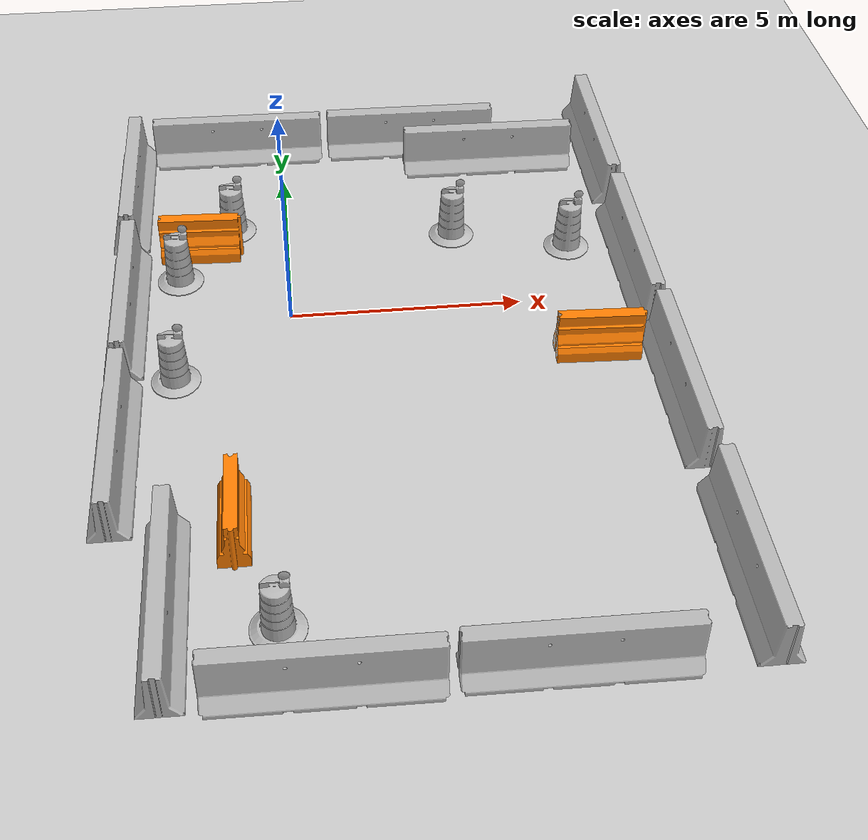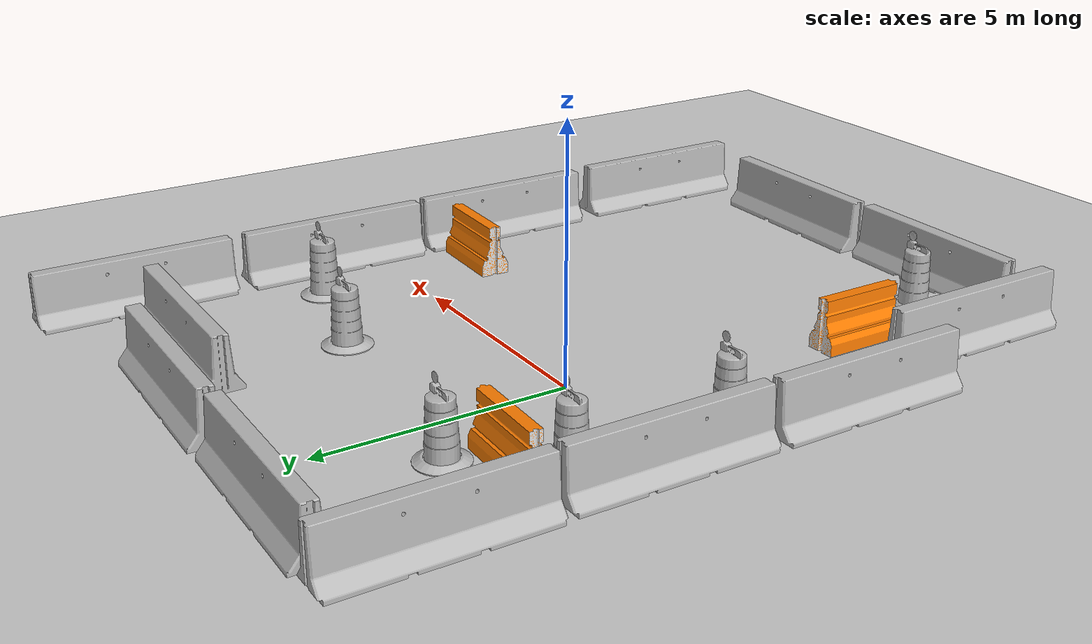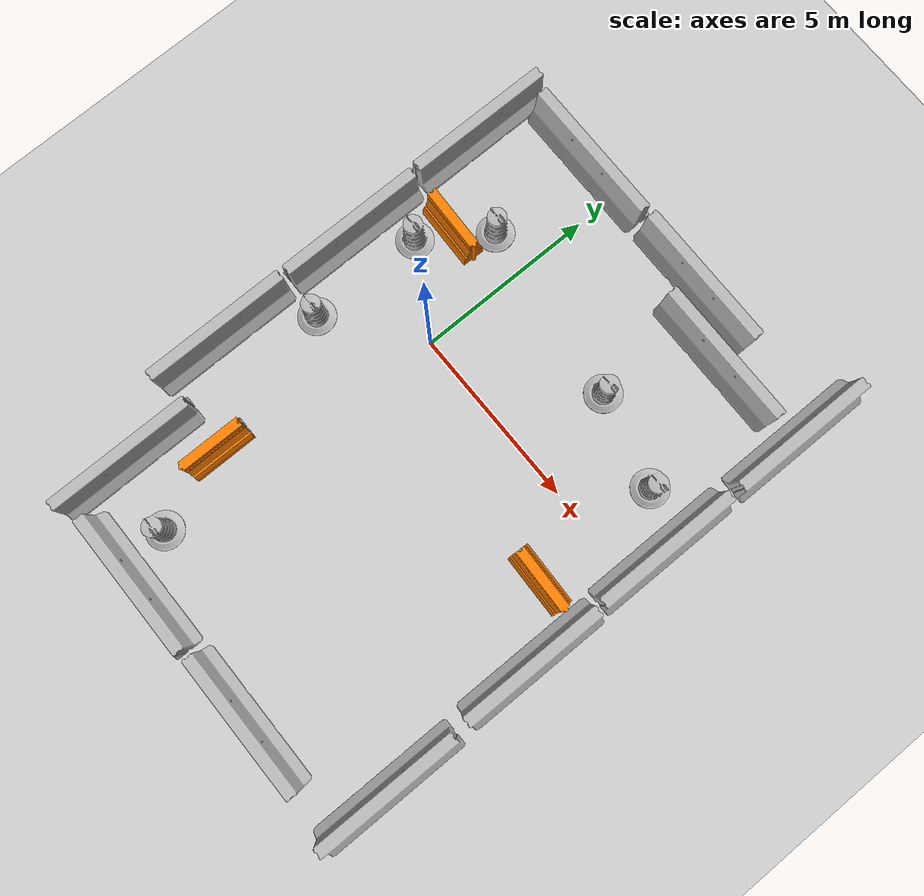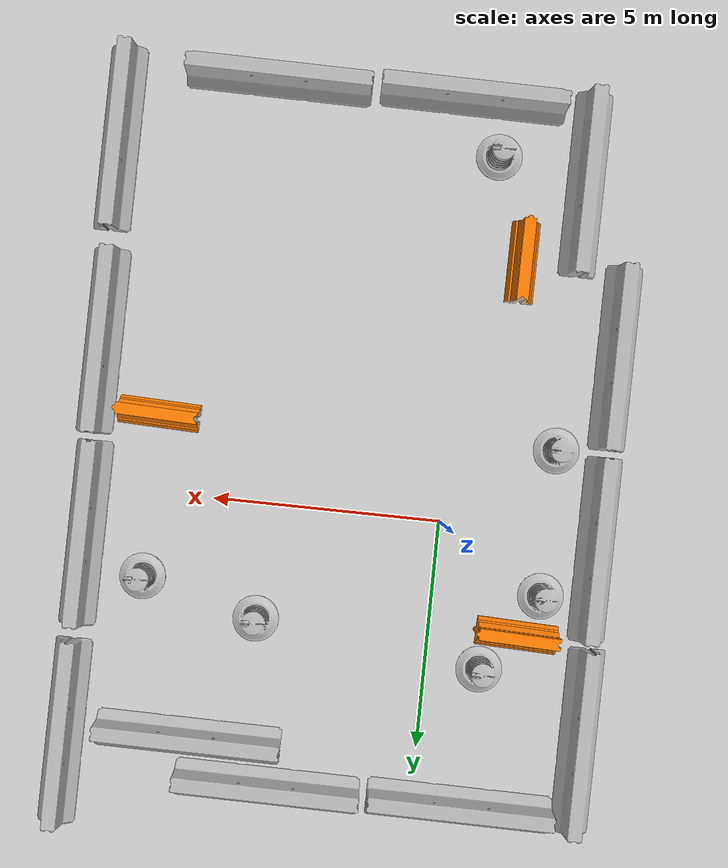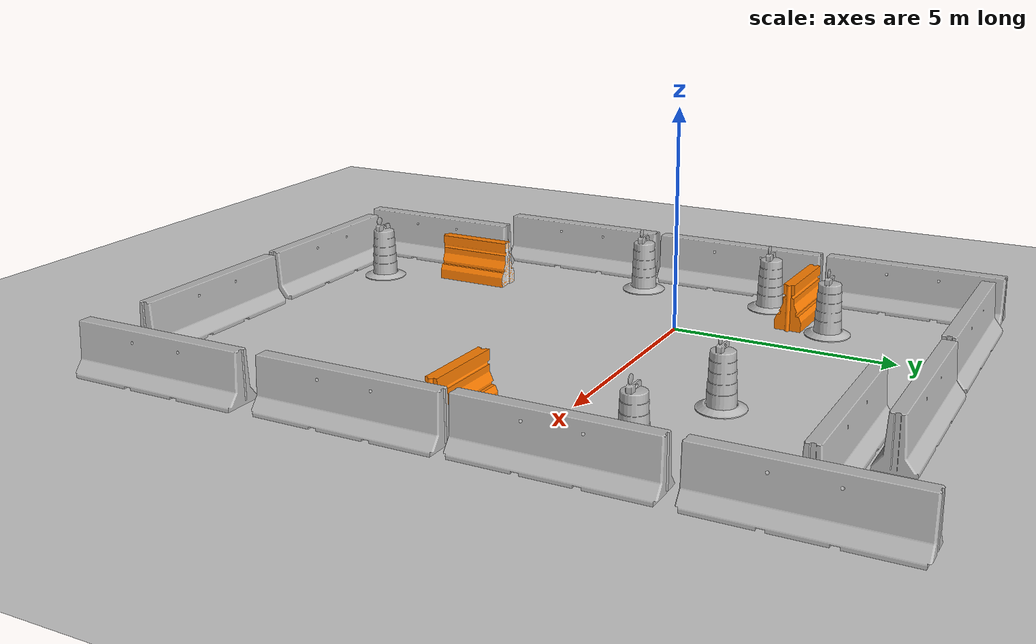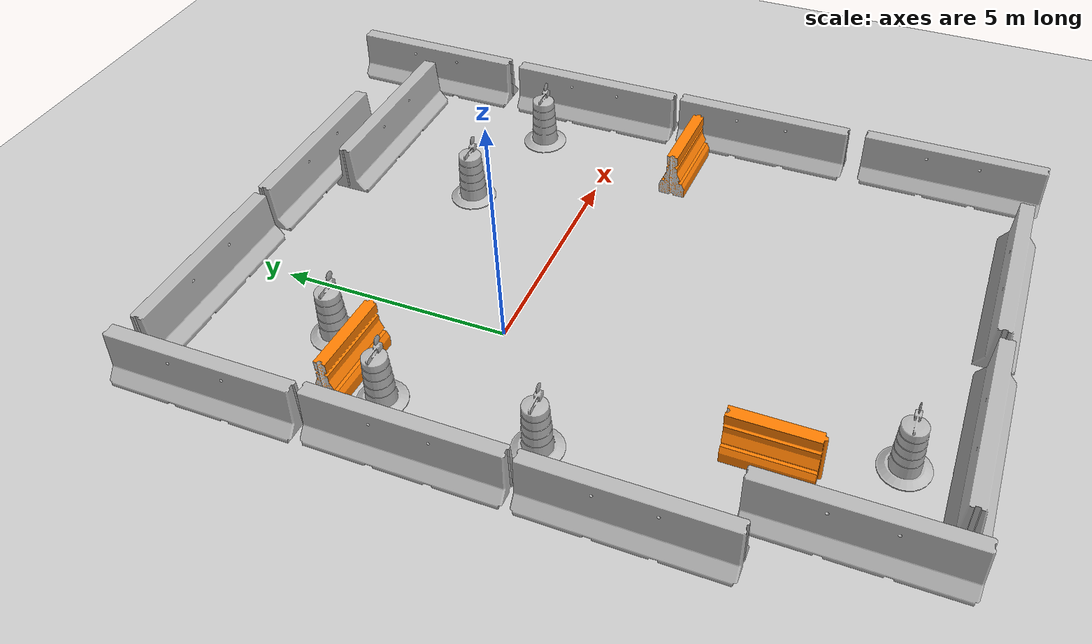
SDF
<sdf version="1.7">
 <world name="default">
  <light name="sun" type="directional">
   <pose>0 0 10 0 -0 0</pose>
   <diffuse>0.8 0.8 0.8 1</diffuse>
   <specular>0.2 0.2 0.2 1</specular>
   <attenuation>
    <range>1000</range>
    <constant>0.9</constant>
    <linear>0.01</linear>
    <quadratic>0.001</quadratic>
   </attenuation>
   <direction>-0.5 0.1 -0.9</direction>
   <spot><inner_angle>0</inner_angle><outer_angle>0</outer_angle><falloff>0</falloff></spot>
  </light>
  <model name="ground_plane">
   <static>1</static>
   <link name="link">
    <collision name="collision">
     <geometry><plane><normal>0 0 1</normal><size>100 100</size></plane></geometry>
     <surface><friction><ode><mu>100</mu><mu2>50</mu2></ode></friction></surface>
    </collision>
    <visual name="visual">
     <cast_shadows>0</cast_shadows>
     <geometry><plane><normal>0 0 1</normal><size>100 100</size></plane></geometry>
     <material>
      <script><uri>file://media/materials/scripts/gazebo.material</uri><name>Gazebo/Grey</name></script>
     </material>
    </visual>
   </link>
  </model>
  <gravity>0 0 -9.8</gravity>
  <magnetic_field>6e-06 2.3e-05 -4.2e-05</magnetic_field>
  <atmosphere type="adiabatic"/>
  <physics type="ode">
   <max_step_size>0.001</max_step_size>
   <real_time_factor>1</real_time_factor>
   <real_time_update_rate>1000</real_time_update_rate>
  </physics>
  <scene><ambient>0.4 0.4 0.4 1</ambient><background>0.7 0.7 0.7 1</background><shadows>1</shadows></scene>
  <audio><device>default</device></audio>
  <spherical_coordinates>
   <surface_model>EARTH_WGS84</surface_model>
   <latitude_deg>0</latitude_deg>
   <longitude_deg>0</longitude_deg>
   <elevation>0</elevation>
   <heading_deg>0</heading_deg>
  </spherical_coordinates>
  <model name="jersey_barrier">
   <static>1</static>
   <link name="link">
    <visual name="visual">
     <geometry><mesh><uri>model://jersey_barrier/meshes/jersey_barrier.dae</uri></mesh></geometry>
    </visual>
    <collision name="upright">
     <pose>0 0 0.5715 0 -0 0</pose>
     <geometry><box><size>4.06542 0.3063 1.143</size></box></geometry>
    </collision>
    <collision name="base">
     <pose>0 0 0.032258 0 -0 0</pose>
     <geometry><box><size>4.06542 0.8107 0.064516</size></box></geometry>
    </collision>
    <collision name="base2">
     <pose>0 0 0.1 0 -0 0</pose>
     <geometry><box><size>4.06542 0.65 0.1</size></box></geometry>
    </collision>
    <collision name="base3">
     <pose>0 0 0.2 0 -0 0</pose>
     <geometry><box><size>4.06542 0.5 0.1</size></box></geometry>
    </collision>
    <collision name="left-angle">
     <pose>0 -0.224 0.2401 0.9 -0 0</pose>
     <geometry><box><size>4.06542 0.5 0.064516</size></box></geometry>
    </collision>
    <collision name="right-angle">
     <pose>0 0.224 0.2401 -0.9 0 0</pose>
     <geometry><box><size>4.06542 0.5 0.064516</size></box></geometry>
    </collision>
   </link>
   <pose>-3.47167 0.268319 0 0 0 -1.57391</pose>
  </model>
  <model name="jersey_barrier_clone">
   <static>1</static>
   <link name="link">
    <visual name="visual">
     <geometry><mesh><uri>model://jersey_barrier/meshes/jersey_barrier.dae</uri></mesh></geometry>
    </visual>
    <collision name="upright">
     <pose>0 0 0.5715 0 -0 0</pose>
     <geometry><box><size>4.06542 0.3063 1.143</size></box></geometry>
    </collision>
    <collision name="base">
     <pose>0 0 0.032258 0 -0 0</pose>
     <geometry><box><size>4.06542 0.8107 0.064516</size></box></geometry>
    </collision>
    <collision name="base2">
     <pose>0 0 0.1 0 -0 0</pose>
     <geometry><box><size>4.06542 0.65 0.1</size></box></geometry>
    </collision>
    <collision name="base3">
     <pose>0 0 0.2 0 -0 0</pose>
     <geometry><box><size>4.06542 0.5 0.1</size></box></geometry>
    </collision>
    <collision name="left-angle">
     <pose>0 -0.224 0.2401 0.9 -0 0</pose>
     <geometry><box><size>4.06542 0.5 0.064516</size></box></geometry>
    </collision>
    <collision name="right-angle">
     <pose>0 0.224 0.2401 -0.9 0 0</pose>
     <geometry><box><size>4.06542 0.5 0.064516</size></box></geometry>
    </collision>
   </link>
   <pose>-3.51559 4.47458 0 0 0 -1.57391</pose>
  </model>
  <model name="jersey_barrier_clone_clone">
   <static>1</static>
   <link name="link">
    <visual name="visual">
     <geometry><mesh><uri>model://jersey_barrier/meshes/jersey_barrier.dae</uri></mesh></geometry>
    </visual>
    <collision name="upright">
     <pose>0 0 0.5715 0 -0 0</pose>
     <geometry><box><size>4.06542 0.3063 1.143</size></box></geometry>
    </collision>
    <collision name="base">
     <pose>0 0 0.032258 0 -0 0</pose>
     <geometry><box><size>4.06542 0.8107 0.064516</size></box></geometry>
    </collision>
    <collision name="base2">
     <pose>0 0 0.1 0 -0 0</pose>
     <geometry><box><size>4.06542 0.65 0.1</size></box></geometry>
    </collision>
    <collision name="base3">
     <pose>0 0 0.2 0 -0 0</pose>
     <geometry><box><size>4.06542 0.5 0.1</size></box></geometry>
    </collision>
    <collision name="left-angle">
     <pose>0 -0.224 0.2401 0.9 -0 0</pose>
     <geometry><box><size>4.06542 0.5 0.064516</size></box></geometry>
    </collision>
    <collision name="right-angle">
     <pose>0 0.224 0.2401 -0.9 0 0</pose>
     <geometry><box><size>4.06542 0.5 0.064516</size></box></geometry>
    </collision>
   </link>
   <pose>-3.49194 -3.94559 0 0 0 -1.57391</pose>
  </model>
  <model name="jersey_barrier_clone_clone_0">
   <static>1</static>
   <link name="link">
    <visual name="visual">
     <geometry><mesh><uri>model://jersey_barrier/meshes/jersey_barrier.dae</uri></mesh></geometry>
    </visual>
    <collision name="upright">
     <pose>0 0 0.5715 0 -0 0</pose>
     <geometry><box><size>4.06542 0.3063 1.143</size></box></geometry>
    </collision>
    <collision name="base">
     <pose>0 0 0.032258 0 -0 0</pose>
     <geometry><box><size>4.06542 0.8107 0.064516</size></box></geometry>
    </collision>
    <collision name="base2">
     <pose>0 0 0.1 0 -0 0</pose>
     <geometry><box><size>4.06542 0.65 0.1</size></box></geometry>
    </collision>
    <collision name="base3">
     <pose>0 0 0.2 0 -0 0</pose>
     <geometry><box><size>4.06542 0.5 0.1</size></box></geometry>
    </collision>
    <collision name="left-angle">
     <pose>0 -0.224 0.2401 0.9 -0 0</pose>
     <geometry><box><size>4.06542 0.5 0.064516</size></box></geometry>
    </collision>
    <collision name="right-angle">
     <pose>0 0.224 0.2401 -0.9 0 0</pose>
     <geometry><box><size>4.06542 0.5 0.064516</size></box></geometry>
    </collision>
   </link>
   <pose>-1.04259 6.17471 0 0 0 -0.010026</pose>
  </model>
  <model name="jersey_barrier_clone_clone_0_clone">
   <static>1</static>
   <link name="link">
    <visual name="visual">
     <geometry><mesh><uri>model://jersey_barrier/meshes/jersey_barrier.dae</uri></mesh></geometry>
    </visual>
    <collision name="upright">
     <pose>0 0 0.5715 0 -0 0</pose>
     <geometry><box><size>4.06542 0.3063 1.143</size></box></geometry>
    </collision>
    <collision name="base">
     <pose>0 0 0.032258 0 -0 0</pose>
     <geometry><box><size>4.06542 0.8107 0.064516</size></box></geometry>
    </collision>
    <collision name="base2">
     <pose>0 0 0.1 0 -0 0</pose>
     <geometry><box><size>4.06542 0.65 0.1</size></box></geometry>
    </collision>
    <collision name="base3">
     <pose>0 0 0.2 0 -0 0</pose>
     <geometry><box><size>4.06542 0.5 0.1</size></box></geometry>
    </collision>
    <collision name="left-angle">
     <pose>0 -0.224 0.2401 0.9 -0 0</pose>
     <geometry><box><size>4.06542 0.5 0.064516</size></box></geometry>
    </collision>
    <collision name="right-angle">
     <pose>0 0.224 0.2401 -0.9 0 0</pose>
     <geometry><box><size>4.06542 0.5 0.064516</size></box></geometry>
    </collision>
   </link>
   <pose>3.19196 6.17566 0 0 0 -0.010026</pose>
  </model>
  <model name="jersey_barrier_clone_clone_clone">
   <static>1</static>
   <link name="link">
    <visual name="visual">
     <geometry><mesh><uri>model://jersey_barrier/meshes/jersey_barrier.dae</uri></mesh></geometry>
    </visual>
    <collision name="upright">
     <pose>0 0 0.5715 0 -0 0</pose>
     <geometry><box><size>4.06542 0.3063 1.143</size></box></geometry>
    </collision>
    <collision name="base">
     <pose>0 0 0.032258 0 -0 0</pose>
     <geometry><box><size>4.06542 0.8107 0.064516</size></box></geometry>
    </collision>
    <collision name="base2">
     <pose>0 0 0.1 0 -0 0</pose>
     <geometry><box><size>4.06542 0.65 0.1</size></box></geometry>
    </collision>
    <collision name="base3">
     <pose>0 0 0.2 0 -0 0</pose>
     <geometry><box><size>4.06542 0.5 0.1</size></box></geometry>
    </collision>
    <collision name="left-angle">
     <pose>0 -0.224 0.2401 0.9 -0 0</pose>
     <geometry><box><size>4.06542 0.5 0.064516</size></box></geometry>
    </collision>
    <collision name="right-angle">
     <pose>0 0.224 0.2401 -0.9 0 0</pose>
     <geometry><box><size>4.06542 0.5 0.064516</size></box></geometry>
    </collision>
   </link>
   <pose>-2.45373 -7.67188 0 0 0 -1.57391</pose>
  </model>
  <model name="jersey_barrier_clone_clone_0_clone_0">
   <static>1</static>
   <link name="link">
    <visual name="visual">
     <geometry><mesh><uri>model://jersey_barrier/meshes/jersey_barrier.dae</uri></mesh></geometry>
    </visual>
    <collision name="upright">
     <pose>0 0 0.5715 0 -0 0</pose>
     <geometry><box><size>4.06542 0.3063 1.143</size></box></geometry>
    </collision>
    <collision name="base">
     <pose>0 0 0.032258 0 -0 0</pose>
     <geometry><box><size>4.06542 0.8107 0.064516</size></box></geometry>
    </collision>
    <collision name="base2">
     <pose>0 0 0.1 0 -0 0</pose>
     <geometry><box><size>4.06542 0.65 0.1</size></box></geometry>
    </collision>
    <collision name="base3">
     <pose>0 0 0.2 0 -0 0</pose>
     <geometry><box><size>4.06542 0.5 0.1</size></box></geometry>
    </collision>
    <collision name="left-angle">
     <pose>0 -0.224 0.2401 0.9 -0 0</pose>
     <geometry><box><size>4.06542 0.5 0.064516</size></box></geometry>
    </collision>
    <collision name="right-angle">
     <pose>0 0.224 0.2401 -0.9 0 0</pose>
     <geometry><box><size>4.06542 0.5 0.064516</size></box></geometry>
    </collision>
   </link>
   <pose>0.198187 -9.36273 0 0 0 -0.010026</pose>
  </model>
  <model name="jersey_barrier_clone_clone_0_clone_1">
   <static>1</static>
   <link name="link">
    <visual name="visual">
     <geometry><mesh><uri>model://jersey_barrier/meshes/jersey_barrier.dae</uri></mesh></geometry>
    </visual>
    <collision name="upright">
     <pose>0 0 0.5715 0 -0 0</pose>
     <geometry><box><size>4.06542 0.3063 1.143</size></box></geometry>
    </collision>
    <collision name="base">
     <pose>0 0 0.032258 0 -0 0</pose>
     <geometry><box><size>4.06542 0.8107 0.064516</size></box></geometry>
    </collision>
    <collision name="base2">
     <pose>0 0 0.1 0 -0 0</pose>
     <geometry><box><size>4.06542 0.65 0.1</size></box></geometry>
    </collision>
    <collision name="base3">
     <pose>0 0 0.2 0 -0 0</pose>
     <geometry><box><size>4.06542 0.5 0.1</size></box></geometry>
    </collision>
    <collision name="left-angle">
     <pose>0 -0.224 0.2401 0.9 -0 0</pose>
     <geometry><box><size>4.06542 0.5 0.064516</size></box></geometry>
    </collision>
    <collision name="right-angle">
     <pose>0 0.224 0.2401 -0.9 0 0</pose>
     <geometry><box><size>4.06542 0.5 0.064516</size></box></geometry>
    </collision>
   </link>
   <pose>4.45363 -9.33343 0 0 0 -0.010026</pose>
  </model>
  <model name="jersey_barrier_clone_clone_clone_0">
   <static>1</static>
   <link name="link">
    <visual name="visual">
     <geometry><mesh><uri>model://jersey_barrier/meshes/jersey_barrier.dae</uri></mesh></geometry>
    </visual>
    <collision name="upright">
     <pose>0 0 0.5715 0 -0 0</pose>
     <geometry><box><size>4.06542 0.3063 1.143</size></box></geometry>
    </collision>
    <collision name="base">
     <pose>0 0 0.032258 0 -0 0</pose>
     <geometry><box><size>4.06542 0.8107 0.064516</size></box></geometry>
    </collision>
    <collision name="base2">
     <pose>0 0 0.1 0 -0 0</pose>
     <geometry><box><size>4.06542 0.65 0.1</size></box></geometry>
    </collision>
    <collision name="base3">
     <pose>0 0 0.2 0 -0 0</pose>
     <geometry><box><size>4.06542 0.5 0.1</size></box></geometry>
    </collision>
    <collision name="left-angle">
     <pose>0 -0.224 0.2401 0.9 -0 0</pose>
     <geometry><box><size>4.06542 0.5 0.064516</size></box></geometry>
    </collision>
    <collision name="right-angle">
     <pose>0 0.224 0.2401 -0.9 0 0</pose>
     <geometry><box><size>4.06542 0.5 0.064516</size></box></geometry>
    </collision>
   </link>
   <pose>7.811 -7.65626 0 0 0 -1.57391</pose>
  </model>
  <model name="jersey_barrier_clone_clone_clone_1">
   <static>1</static>
   <link name="link">
    <visual name="visual">
     <geometry><mesh><uri>model://jersey_barrier/meshes/jersey_barrier.dae</uri></mesh></geometry>
    </visual>
    <collision name="upright">
     <pose>0 0 0.5715 0 -0 0</pose>
     <geometry><box><size>4.06542 0.3063 1.143</size></box></geometry>
    </collision>
    <collision name="base">
     <pose>0 0 0.032258 0 -0 0</pose>
     <geometry><box><size>4.06542 0.8107 0.064516</size></box></geometry>
    </collision>
    <collision name="base2">
     <pose>0 0 0.1 0 -0 0</pose>
     <geometry><box><size>4.06542 0.65 0.1</size></box></geometry>
    </collision>
    <collision name="base3">
     <pose>0 0 0.2 0 -0 0</pose>
     <geometry><box><size>4.06542 0.5 0.1</size></box></geometry>
    </collision>
    <collision name="left-angle">
     <pose>0 -0.224 0.2401 0.9 -0 0</pose>
     <geometry><box><size>4.06542 0.5 0.064516</size></box></geometry>
    </collision>
    <collision name="right-angle">
     <pose>0 0.224 0.2401 -0.9 0 0</pose>
     <geometry><box><size>4.06542 0.5 0.064516</size></box></geometry>
    </collision>
   </link>
   <pose>7.7441 -3.2014 0 0 0 -1.57391</pose>
  </model>
  <model name="jersey_barrier_clone_clone_clone_2">
   <static>1</static>
   <link name="link">
    <visual name="visual">
     <geometry><mesh><uri>model://jersey_barrier/meshes/jersey_barrier.dae</uri></mesh></geometry>
    </visual>
    <collision name="upright">
     <pose>0 0 0.5715 0 -0 0</pose>
     <geometry><box><size>4.06542 0.3063 1.143</size></box></geometry>
    </collision>
    <collision name="base">
     <pose>0 0 0.032258 0 -0 0</pose>
     <geometry><box><size>4.06542 0.8107 0.064516</size></box></geometry>
    </collision>
    <collision name="base2">
     <pose>0 0 0.1 0 -0 0</pose>
     <geometry><box><size>4.06542 0.65 0.1</size></box></geometry>
    </collision>
    <collision name="base3">
     <pose>0 0 0.2 0 -0 0</pose>
     <geometry><box><size>4.06542 0.5 0.1</size></box></geometry>
    </collision>
    <collision name="left-angle">
     <pose>0 -0.224 0.2401 0.9 -0 0</pose>
     <geometry><box><size>4.06542 0.5 0.064516</size></box></geometry>
    </collision>
    <collision name="right-angle">
     <pose>0 0.224 0.2401 -0.9 0 0</pose>
     <geometry><box><size>4.06542 0.5 0.064516</size></box></geometry>
    </collision>
   </link>
   <pose>7.69922 1.01734 0 0 0 -1.57391</pose>
  </model>
  <model name="jersey_barrier_clone_clone_clone_3">
   <static>1</static>
   <link name="link">
    <visual name="visual">
     <geometry><mesh><uri>model://jersey_barrier/meshes/jersey_barrier.dae</uri></mesh></geometry>
    </visual>
    <collision name="upright">
     <pose>0 0 0.5715 0 -0 0</pose>
     <geometry><box><size>4.06542 0.3063 1.143</size></box></geometry>
    </collision>
    <collision name="base">
     <pose>0 0 0.032258 0 -0 0</pose>
     <geometry><box><size>4.06542 0.8107 0.064516</size></box></geometry>
    </collision>
    <collision name="base2">
     <pose>0 0 0.1 0 -0 0</pose>
     <geometry><box><size>4.06542 0.65 0.1</size></box></geometry>
    </collision>
    <collision name="base3">
     <pose>0 0 0.2 0 -0 0</pose>
     <geometry><box><size>4.06542 0.5 0.1</size></box></geometry>
    </collision>
    <collision name="left-angle">
     <pose>0 -0.224 0.2401 0.9 -0 0</pose>
     <geometry><box><size>4.06542 0.5 0.064516</size></box></geometry>
    </collision>
    <collision name="right-angle">
     <pose>0 0.224 0.2401 -0.9 0 0</pose>
     <geometry><box><size>4.06542 0.5 0.064516</size></box></geometry>
    </collision>
   </link>
   <pose>7.72014 5.3794 0 0 0 -1.57391</pose>
  </model>
  <model name="jersey_barrier_clone_clone_0_clone_clone">
   <static>1</static>
   <link name="link">
    <visual name="visual">
     <geometry><mesh><uri>model://jersey_barrier/meshes/jersey_barrier.dae</uri></mesh></geometry>
    </visual>
    <collision name="upright">
     <pose>0 0 0.5715 0 -0 0</pose>
     <geometry><box><size>4.06542 0.3063 1.143</size></box></geometry>
    </collision>
    <collision name="base">
     <pose>0 0 0.032258 0 -0 0</pose>
     <geometry><box><size>4.06542 0.8107 0.064516</size></box></geometry>
    </collision>
    <collision name="base2">
     <pose>0 0 0.1 0 -0 0</pose>
     <geometry><box><size>4.06542 0.65 0.1</size></box></geometry>
    </collision>
    <collision name="base3">
     <pose>0 0 0.2 0 -0 0</pose>
     <geometry><box><size>4.06542 0.5 0.1</size></box></geometry>
    </collision>
    <collision name="left-angle">
     <pose>0 -0.224 0.2401 0.9 -0 0</pose>
     <geometry><box><size>4.06542 0.5 0.064516</size></box></geometry>
    </collision>
    <collision name="right-angle">
     <pose>0 0.224 0.2401 -0.9 0 0</pose>
     <geometry><box><size>4.06542 0.5 0.064516</size></box></geometry>
    </collision>
   </link>
   <pose>5.00455 5.26458 0 0 0 -0.010026</pose>
  </model>
  <model name="Construction Barrel">
   <link name="link">
    <inertial>
     <pose>0 0 0.4 0 -0 0</pose>
     <mass>500</mass>
     <inertia><ixx>51.2096</ixx><iyy>51.2096</iyy><izz>25</izz><ixy>0</ixy><ixz>0</ixz><iyz>0</iyz></inertia>
    </inertial>
    <collision name="collision">
     <geometry><mesh><uri>model://construction_barrel/meshes/construction_barrel.dae</uri></mesh></geometry>
    </collision>
    <visual name="visual">
     <geometry><mesh><uri>model://construction_barrel/meshes/construction_barrel.dae</uri></mesh></geometry>
    </visual>
   </link>
   <pose>3.79978 2.53711 1e-06 3e-06 2e-06 -3.3e-05</pose>
  </model>
  <model name="Construction Barrel_0">
   <link name="link">
    <inertial>
     <pose>0 0 0.4 0 -0 0</pose>
     <mass>500</mass>
     <inertia><ixx>51.2096</ixx><iyy>51.2096</iyy><izz>25</izz><ixy>0</ixy><ixz>0</ixz><iyz>0</iyz></inertia>
    </inertial>
    <collision name="collision">
     <geometry><mesh><uri>model://construction_barrel/meshes/construction_barrel.dae</uri></mesh></geometry>
    </collision>
    <visual name="visual">
     <geometry><mesh><uri>model://construction_barrel/meshes/construction_barrel.dae</uri></mesh></geometry>
    </visual>
   </link>
   <pose>-1.20184 3.1527 1e-06 3e-06 2e-06 -3.2e-05</pose>
  </model>
  <model name="Construction Barrel_1">
   <link name="link">
    <inertial>
     <pose>0 0 0.4 0 -0 0</pose>
     <mass>500</mass>
     <inertia><ixx>51.2096</ixx><iyy>51.2096</iyy><izz>25</izz><ixy>0</ixy><ixz>0</ixz><iyz>0</iyz></inertia>
    </inertial>
    <collision name="collision">
     <geometry><mesh><uri>model://construction_barrel/meshes/construction_barrel.dae</uri></mesh></geometry>
    </collision>
    <visual name="visual">
     <geometry><mesh><uri>model://construction_barrel/meshes/construction_barrel.dae</uri></mesh></geometry>
    </visual>
   </link>
   <pose>-0.508954 -8.11497 1e-06 3e-06 2e-06 -3.1e-05</pose>
  </model>
  <model name="Construction Barrel_2">
   <link name="link">
    <inertial>
     <pose>0 0 0.4 0 -0 0</pose>
     <mass>500</mass>
     <inertia><ixx>51.2096</ixx><iyy>51.2096</iyy><izz>25</izz><ixy>0</ixy><ixz>0</ixz><iyz>0</iyz></inertia>
    </inertial>
    <collision name="collision">
     <geometry><mesh><uri>model://construction_barrel/meshes/construction_barrel.dae</uri></mesh></geometry>
    </collision>
    <visual name="visual">
     <geometry><mesh><uri>model://construction_barrel/meshes/construction_barrel.dae</uri></mesh></geometry>
    </visual>
   </link>
   <pose>6.37132 1.85913 1e-06 3e-06 2e-06 -2.8e-05</pose>
  </model>
  <model name="Construction Barrel_3">
   <link name="link">
    <inertial>
     <pose>0 0 0.4 0 -0 0</pose>
     <mass>500</mass>
     <inertia><ixx>51.2096</ixx><iyy>51.2096</iyy><izz>25</izz><ixy>0</ixy><ixz>0</ixz><iyz>0</iyz></inertia>
    </inertial>
    <collision name="collision">
     <geometry><mesh><uri>model://construction_barrel/meshes/construction_barrel.dae</uri></mesh></geometry>
    </collision>
    <visual name="visual">
     <geometry><mesh><uri>model://construction_barrel/meshes/construction_barrel.dae</uri></mesh></geometry>
    </visual>
   </link>
   <pose>-2.39013 1.41868 1e-06 3e-06 2e-06 -2.7e-05</pose>
  </model>
  <model name="Construction Barrel_4">
   <link name="link">
    <inertial>
     <pose>0 0 0.4 0 -0 0</pose>
     <mass>500</mass>
     <inertia><ixx>51.2096</ixx><iyy>51.2096</iyy><izz>25</izz><ixy>0</ixy><ixz>0</ixz><iyz>0</iyz></inertia>
    </inertial>
    <collision name="collision">
     <geometry><mesh><uri>model://construction_barrel/meshes/construction_barrel.dae</uri></mesh></geometry>
    </collision>
    <visual name="visual">
     <geometry><mesh><uri>model://construction_barrel/meshes/construction_barrel.dae</uri></mesh></geometry>
    </visual>
   </link>
   <pose>-2.40939 -1.80429 1e-06 3e-06 2e-06 -2.6e-05</pose>
  </model>
  <model name="drc_practice_organge_jersey_barrier">
   <static>1</static>
   <link name="link">
    <visual name="visual">
     <geometry>
      <mesh><uri>model://drc_practice_orange_jersey_barrier/meshes/jersey_barrier.dae</uri></mesh>
     </geometry>
    </visual>
    <collision name="collision">
     <geometry>
      <mesh><uri>model://drc_practice_orange_jersey_barrier/meshes/jersey_barrier.dae</uri></mesh>
     </geometry>
    </collision>
   </link>
   <pose>-1.23669 -5.83097 0 0 -0 0</pose>
  </model>
  <model name="drc_practice_organge_jersey_barrier_0">
   <static>1</static>
   <link name="link">
    <visual name="visual">
     <geometry>
      <mesh><uri>model://drc_practice_orange_jersey_barrier/meshes/jersey_barrier.dae</uri></mesh>
     </geometry>
    </visual>
    <collision name="collision">
     <geometry>
      <mesh><uri>model://drc_practice_orange_jersey_barrier/meshes/jersey_barrier.dae</uri></mesh>
     </geometry>
    </collision>
   </link>
   <pose>-1.93074 2.31248 0 0 -0 1.53957</pose>
  </model>
  <model name="drc_practice_organge_jersey_barrier_0_clone">
   <static>1</static>
   <link name="link">
    <visual name="visual">
     <geometry>
      <mesh><uri>model://drc_practice_orange_jersey_barrier/meshes/jersey_barrier.dae</uri></mesh>
     </geometry>
    </visual>
    <collision name="collision">
     <geometry>
      <mesh><uri>model://drc_practice_orange_jersey_barrier/meshes/jersey_barrier.dae</uri></mesh>
     </geometry>
    </collision>
   </link>
   <pose>6.33881 -1.73571 0 0 -0 1.53957</pose>
  </model>
 </world>
</sdf>
